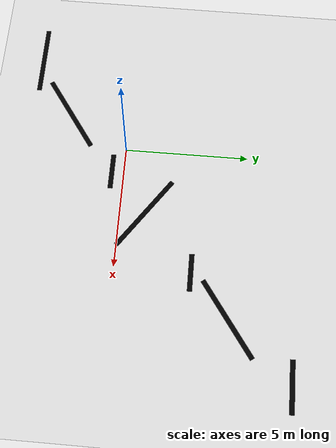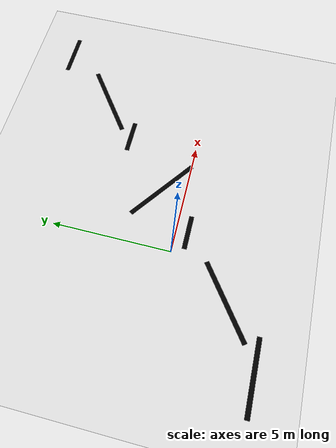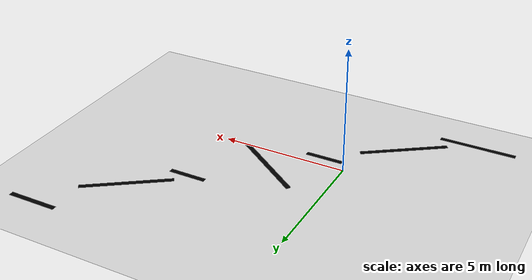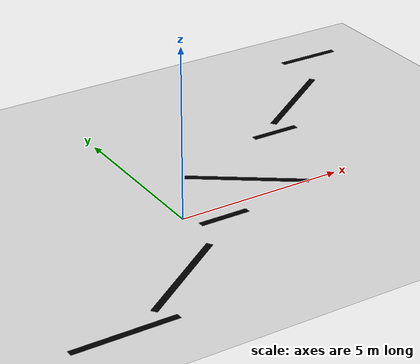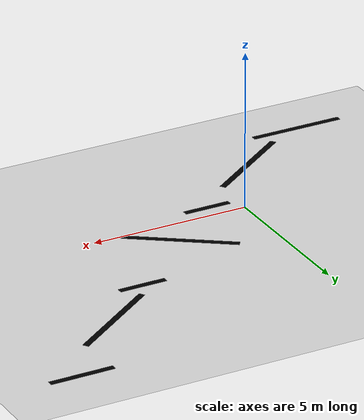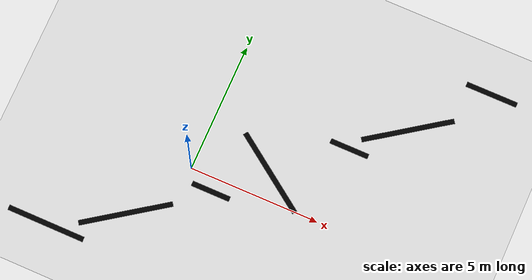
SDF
<?xml version="1.0"?>
<sdf version="1.6">
  <world name="zigzag_continuous_world">

    <!-- Lumière du soleil -->
    <include>
      <uri>model://sun</uri>
    </include>

    <!-- Sol blanc -->
    <model name="ground_plane">
      <static>true</static>
      <link name="link">
        <collision name="collision">
          <geometry>
            <plane>
              <normal>0 0 1</normal>
              <size>40 40</size>
            </plane>
          </geometry>
        </collision>
        <visual name="visual">
          <geometry>
            <plane>
              <normal>0 0 1</normal>
              <size>40 40</size>
            </plane>
          </geometry>
          <material>
            <script>
              <uri>file://media/materials/scripts/gazebo.material</uri>
              <name>Gazebo/White</name>
            </script>
          </material>
        </visual>
      </link>
    </model>

    <!-- Segment 1 : Départ horizontal -->
    <model name="line_1">
      <static>true</static>
      <pose>-4 -4 0.001 0 0 0</pose>
      <link name="link">
        <visual name="visual">
          <geometry>
            <box>
              <size>3 0.2 0.001</size>
            </box>
          </geometry>
          <material>
            <ambient>0 0 0 1</ambient>
            <diffuse>0 0 0 1</diffuse>
          </material>
        </visual>
      </link>
    </model>

    <!-- Segment 2 : Diagonale montante -->
    <model name="line_2">
      <static>true</static>
      <pose>-1.5 -2.5 0.001 0 0 0.615</pose>
      <link name="link">
        <visual name="visual">
          <geometry>
            <box>
              <size>3.5 0.2 0.001</size>
            </box>
          </geometry>
          <material>
            <ambient>0 0 0 1</ambient>
            <diffuse>0 0 0 1</diffuse>
          </material>
        </visual>
      </link>
    </model>

    <!-- Segment 3 : Horizontal court (sommet) -->
    <model name="line_3">
      <static>true</static>
      <pose>1 -0.5 0.001 0 0 0</pose>
      <link name="link">
        <visual name="visual">
          <geometry>
            <box>
              <size>1.5 0.2 0.001</size>
            </box>
          </geometry>
          <material>
            <ambient>0 0 0 1</ambient>
            <diffuse>0 0 0 1</diffuse>
          </material>
        </visual>
      </link>
    </model>

    <!-- Segment 4 : Diagonale descendante -->
    <model name="line_4">
      <static>true</static>
      <pose>2.7 1 0.001 0 0 -0.615</pose>
      <link name="link">
        <visual name="visual">
          <geometry>
            <box>
              <size>3.5 0.2 0.001</size>
            </box>
          </geometry>
          <material>
            <ambient>0 0 0 1</ambient>
            <diffuse>0 0 0 1</diffuse>
          </material>
        </visual>
      </link>
    </model>

    <!-- Segment 5 : Horizontal bas -->
    <model name="line_5">
      <static>true</static>
      <pose>5 3 0.001 0 0 0</pose>
      <link name="link">
        <visual name="visual">
          <geometry>
            <box>
              <size>1.5 0.2 0.001</size>
            </box>
          </geometry>
          <material>
            <ambient>0 0 0 1</ambient>
            <diffuse>0 0 0 1</diffuse>
          </material>
        </visual>
      </link>
    </model>

    <!-- Segment 6 : Diagonale montante 2 -->
    <model name="line_6">
      <static>true</static>
      <pose>6.7 4.5 0.001 0 0 0.615</pose>
      <link name="link">
        <visual name="visual">
          <geometry>
            <box>
              <size>3.5 0.2 0.001</size>
            </box>
          </geometry>
          <material>
            <ambient>0 0 0 1</ambient>
            <diffuse>0 0 0 1</diffuse>
          </material>
        </visual>
      </link>
    </model>

    <!-- Segment 7 : Arrivée -->
    <model name="line_7">
      <static>true</static>
      <pose>9 7 0.001 0 0 0</pose>
      <link name="link">
        <visual name="visual">
          <geometry>
            <box>
              <size>2 0.2 0.001</size>
            </box>
          </geometry>
          <material>
            <ambient>0 0 0 1</ambient>
            <diffuse>0 0 0 1</diffuse>
          </material>
        </visual>
      </link>
    </model>

  </world>
</sdf>
